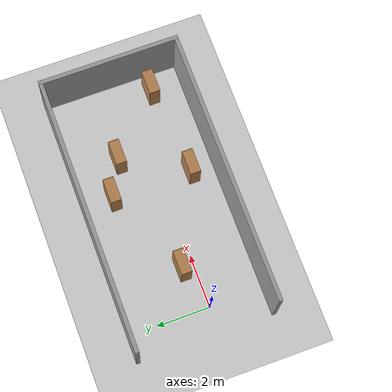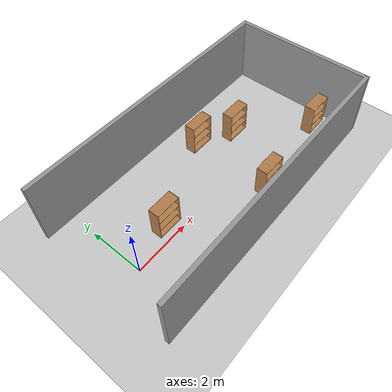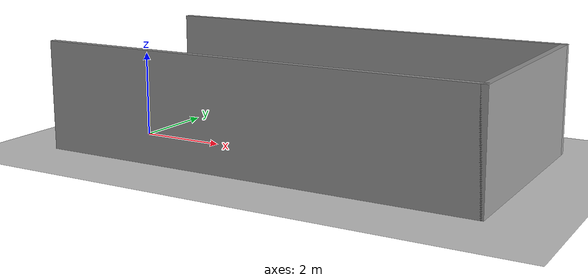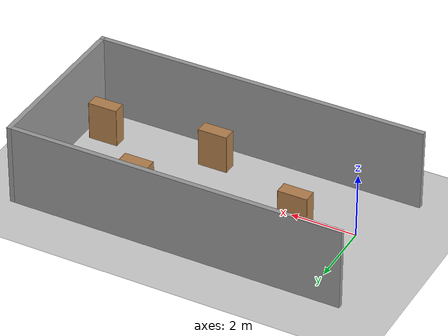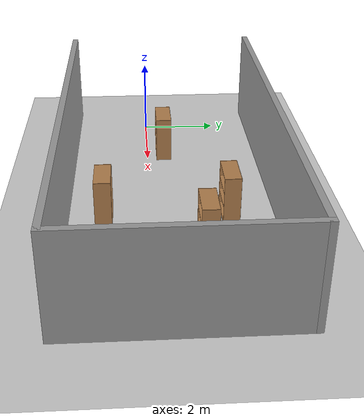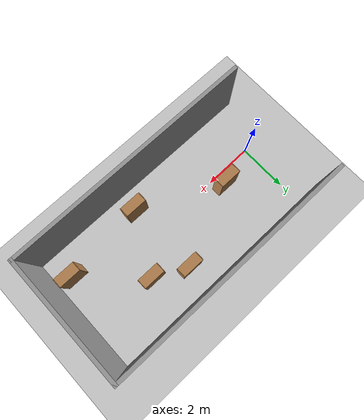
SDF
<sdf version="1.7">
 <world name="default">
  <light name="sun" type="directional">
   <pose>0 0 10 0 -0 0</pose>
   <diffuse>0.8 0.8 0.8 1</diffuse>
   <specular>0.2 0.2 0.2 1</specular>
   <attenuation>
    <range>1000</range>
    <constant>0.9</constant>
    <linear>0.01</linear>
    <quadratic>0.001</quadratic>
   </attenuation>
   <direction>-0.5 0.1 -0.9</direction>
   <spot><inner_angle>0</inner_angle><outer_angle>0</outer_angle><falloff>0</falloff></spot>
  </light>
  <model name="ground_plane">
   <static>1</static>
   <link name="link">
    <collision name="collision">
     <geometry><plane><normal>0 0 1</normal><size>100 100</size></plane></geometry>
     <surface><friction><ode><mu>100</mu><mu2>50</mu2></ode></friction></surface>
    </collision>
    <visual name="visual">
     <cast_shadows>0</cast_shadows>
     <geometry><plane><normal>0 0 1</normal><size>100 100</size></plane></geometry>
     <material>
      <script><uri>file://media/materials/scripts/gazebo.material</uri><name>Gazebo/Grey</name></script>
     </material>
    </visual>
   </link>
  </model>
  <gravity>0 0 -9.8</gravity>
  <magnetic_field>6e-06 2.3e-05 -4.2e-05</magnetic_field>
  <atmosphere type="adiabatic"/>
  <physics type="ode">
   <max_step_size>0.001</max_step_size>
   <real_time_factor>1</real_time_factor>
   <real_time_update_rate>1000</real_time_update_rate>
  </physics>
  <scene><ambient>0.4 0.4 0.4 1</ambient><background>0.7 0.7 0.7 1</background><shadows>1</shadows></scene>
  <spherical_coordinates>
   <surface_model>EARTH_WGS84</surface_model>
   <latitude_deg>0</latitude_deg>
   <longitude_deg>0</longitude_deg>
   <elevation>0</elevation>
   <heading_deg>0</heading_deg>
  </spherical_coordinates>
  <model name="walls">
   <pose>4.11162 0.501893 0 0 -0 0</pose>
   <link name="Wall_5">
    <collision name="Wall_5_Collision">
     <geometry><box><size>10.25 0.15 2.5</size></box></geometry>
     <pose>0 0 1.25 0 -0 0</pose>
    </collision>
    <visual name="Wall_5_Visual">
     <pose>0 0 1.25 0 -0 0</pose>
     <geometry><box><size>10.25 0.15 2.5</size></box></geometry>
     <material>
      <script><uri>file://media/materials/scripts/gazebo.material</uri><name>Gazebo/Grey</name></script>
      <ambient>1 1 1 1</ambient>
     </material>
     <meta><layer>0</layer></meta>
    </visual>
    <pose>-0 -2.55 0 0 -0 0</pose>
   </link>
   <link name="Wall_6">
    <collision name="Wall_6_Collision">
     <geometry><box><size>5.25 0.15 2.5</size></box></geometry>
     <pose>0 0 1.25 0 -0 0</pose>
    </collision>
    <visual name="Wall_6_Visual">
     <pose>0 0 1.25 0 -0 0</pose>
     <geometry><box><size>5.25 0.15 2.5</size></box></geometry>
     <material>
      <script><uri>file://media/materials/scripts/gazebo.material</uri><name>Gazebo/Grey</name></script>
      <ambient>1 1 1 1</ambient>
     </material>
     <meta><layer>0</layer></meta>
    </visual>
    <pose>5.05 0 0 0 -0 1.5708</pose>
   </link>
   <link name="Wall_7">
    <collision name="Wall_7_Collision">
     <geometry><box><size>10.25 0.15 2.5</size></box></geometry>
     <pose>0 0 1.25 0 -0 0</pose>
    </collision>
    <visual name="Wall_7_Visual">
     <pose>0 0 1.25 0 -0 0</pose>
     <geometry><box><size>10.25 0.15 2.5</size></box></geometry>
     <material>
      <script><uri>file://media/materials/scripts/gazebo.material</uri><name>Gazebo/Grey</name></script>
      <ambient>1 1 1 1</ambient>
     </material>
     <meta><layer>0</layer></meta>
    </visual>
    <pose>-0 2.55 0 0 -0 3.14159</pose>
   </link>
   <static>1</static>
  </model>
  <model name="bookshelf">
   <static>1</static>
   <link name="link">
    <inertial><mass>1</mass></inertial>
    <collision name="back">
     <pose>0 0.005 0.6 0 -0 0</pose>
     <geometry><box><size>0.9 0.01 1.2</size></box></geometry>
    </collision>
    <visual name="visual1">
     <pose>0 0.005 0.6 0 -0 0</pose>
     <geometry><box><size>0.9 0.01 1.2</size></box></geometry>
     <material>
      <script><uri>file://media/materials/scripts/gazebo.material</uri><name>Gazebo/Wood</name></script>
     </material>
    </visual>
    <collision name="left_side">
     <pose>0.45 -0.195 0.6 0 -0 0</pose>
     <geometry><box><size>0.02 0.4 1.2</size></box></geometry>
    </collision>
    <visual name="visual2">
     <pose>0.45 -0.195 0.6 0 -0 0</pose>
     <geometry><box><size>0.02 0.4 1.2</size></box></geometry>
     <material>
      <script><uri>file://media/materials/scripts/gazebo.material</uri><name>Gazebo/Wood</name></script>
     </material>
    </visual>
    <collision name="right_side">
     <pose>-0.45 -0.195 0.6 0 -0 0</pose>
     <geometry><box><size>0.02 0.4 1.2</size></box></geometry>
    </collision>
    <visual name="visual3">
     <pose>-0.45 -0.195 0.6 0 -0 0</pose>
     <geometry><box><size>0.02 0.4 1.2</size></box></geometry>
     <material>
      <script><uri>file://media/materials/scripts/gazebo.material</uri><name>Gazebo/Wood</name></script>
     </material>
    </visual>
    <collision name="bottom">
     <pose>0 -0.195 0.03 0 -0 0</pose>
     <geometry><box><size>0.88 0.4 0.06</size></box></geometry>
    </collision>
    <visual name="visual4">
     <pose>0 -0.195 0.03 0 -0 0</pose>
     <geometry><box><size>0.88 0.4 0.06</size></box></geometry>
     <material>
      <script><uri>file://media/materials/scripts/gazebo.material</uri><name>Gazebo/Wood</name></script>
     </material>
    </visual>
    <collision name="top">
     <pose>0 -0.195 1.19 0 -0 0</pose>
     <geometry><box><size>0.88 0.4 0.02</size></box></geometry>
    </collision>
    <visual name="visual5">
     <pose>0 -0.195 1.19 0 -0 0</pose>
     <geometry><box><size>0.88 0.4 0.02</size></box></geometry>
     <material>
      <script><uri>file://media/materials/scripts/gazebo.material</uri><name>Gazebo/Wood</name></script>
     </material>
    </visual>
    <collision name="low_shelf">
     <pose>0 -0.195 0.43 0 -0 0</pose>
     <geometry><box><size>0.88 0.4 0.02</size></box></geometry>
    </collision>
    <visual name="visual6">
     <pose>0 -0.195 0.43 0 -0 0</pose>
     <geometry><box><size>0.88 0.4 0.02</size></box></geometry>
     <material>
      <script><uri>file://media/materials/scripts/gazebo.material</uri><name>Gazebo/Wood</name></script>
     </material>
    </visual>
    <collision name="high_shelf">
     <pose>0 -0.195 0.8 0 -0 0</pose>
     <geometry><box><size>0.88 0.4 0.02</size></box></geometry>
    </collision>
    <visual name="visual7">
     <pose>0 -0.195 0.8 0 -0 0</pose>
     <geometry><box><size>0.88 0.4 0.02</size></box></geometry>
     <material>
      <script><uri>file://media/materials/scripts/gazebo.material</uri><name>Gazebo/Wood</name></script>
     </material>
    </visual>
   </link>
   <pose>1.66425 0.640418 0 0 -0 0</pose>
  </model>
  <model name="bookshelf_0">
   <static>1</static>
   <link name="link">
    <inertial><mass>1</mass></inertial>
    <collision name="back">
     <pose>0 0.005 0.6 0 -0 0</pose>
     <geometry><box><size>0.9 0.01 1.2</size></box></geometry>
    </collision>
    <visual name="visual1">
     <pose>0 0.005 0.6 0 -0 0</pose>
     <geometry><box><size>0.9 0.01 1.2</size></box></geometry>
     <material>
      <script><uri>file://media/materials/scripts/gazebo.material</uri><name>Gazebo/Wood</name></script>
     </material>
    </visual>
    <collision name="left_side">
     <pose>0.45 -0.195 0.6 0 -0 0</pose>
     <geometry><box><size>0.02 0.4 1.2</size></box></geometry>
    </collision>
    <visual name="visual2">
     <pose>0.45 -0.195 0.6 0 -0 0</pose>
     <geometry><box><size>0.02 0.4 1.2</size></box></geometry>
     <material>
      <script><uri>file://media/materials/scripts/gazebo.material</uri><name>Gazebo/Wood</name></script>
     </material>
    </visual>
    <collision name="right_side">
     <pose>-0.45 -0.195 0.6 0 -0 0</pose>
     <geometry><box><size>0.02 0.4 1.2</size></box></geometry>
    </collision>
    <visual name="visual3">
     <pose>-0.45 -0.195 0.6 0 -0 0</pose>
     <geometry><box><size>0.02 0.4 1.2</size></box></geometry>
     <material>
      <script><uri>file://media/materials/scripts/gazebo.material</uri><name>Gazebo/Wood</name></script>
     </material>
    </visual>
    <collision name="bottom">
     <pose>0 -0.195 0.03 0 -0 0</pose>
     <geometry><box><size>0.88 0.4 0.06</size></box></geometry>
    </collision>
    <visual name="visual4">
     <pose>0 -0.195 0.03 0 -0 0</pose>
     <geometry><box><size>0.88 0.4 0.06</size></box></geometry>
     <material>
      <script><uri>file://media/materials/scripts/gazebo.material</uri><name>Gazebo/Wood</name></script>
     </material>
    </visual>
    <collision name="top">
     <pose>0 -0.195 1.19 0 -0 0</pose>
     <geometry><box><size>0.88 0.4 0.02</size></box></geometry>
    </collision>
    <visual name="visual5">
     <pose>0 -0.195 1.19 0 -0 0</pose>
     <geometry><box><size>0.88 0.4 0.02</size></box></geometry>
     <material>
      <script><uri>file://media/materials/scripts/gazebo.material</uri><name>Gazebo/Wood</name></script>
     </material>
    </visual>
    <collision name="low_shelf">
     <pose>0 -0.195 0.43 0 -0 0</pose>
     <geometry><box><size>0.88 0.4 0.02</size></box></geometry>
    </collision>
    <visual name="visual6">
     <pose>0 -0.195 0.43 0 -0 0</pose>
     <geometry><box><size>0.88 0.4 0.02</size></box></geometry>
     <material>
      <script><uri>file://media/materials/scripts/gazebo.material</uri><name>Gazebo/Wood</name></script>
     </material>
    </visual>
    <collision name="high_shelf">
     <pose>0 -0.195 0.8 0 -0 0</pose>
     <geometry><box><size>0.88 0.4 0.02</size></box></geometry>
    </collision>
    <visual name="visual7">
     <pose>0 -0.195 0.8 0 -0 0</pose>
     <geometry><box><size>0.88 0.4 0.02</size></box></geometry>
     <material>
      <script><uri>file://media/materials/scripts/gazebo.material</uri><name>Gazebo/Wood</name></script>
     </material>
    </visual>
   </link>
   <pose>4.95819 2.0873 0 0 -0 0</pose>
  </model>
  <model name="bookshelf_1">
   <static>1</static>
   <link name="link">
    <inertial><mass>1</mass></inertial>
    <collision name="back">
     <pose>0 0.005 0.6 0 -0 0</pose>
     <geometry><box><size>0.9 0.01 1.2</size></box></geometry>
    </collision>
    <visual name="visual1">
     <pose>0 0.005 0.6 0 -0 0</pose>
     <geometry><box><size>0.9 0.01 1.2</size></box></geometry>
     <material>
      <script><uri>file://media/materials/scripts/gazebo.material</uri><name>Gazebo/Wood</name></script>
     </material>
    </visual>
    <collision name="left_side">
     <pose>0.45 -0.195 0.6 0 -0 0</pose>
     <geometry><box><size>0.02 0.4 1.2</size></box></geometry>
    </collision>
    <visual name="visual2">
     <pose>0.45 -0.195 0.6 0 -0 0</pose>
     <geometry><box><size>0.02 0.4 1.2</size></box></geometry>
     <material>
      <script><uri>file://media/materials/scripts/gazebo.material</uri><name>Gazebo/Wood</name></script>
     </material>
    </visual>
    <collision name="right_side">
     <pose>-0.45 -0.195 0.6 0 -0 0</pose>
     <geometry><box><size>0.02 0.4 1.2</size></box></geometry>
    </collision>
    <visual name="visual3">
     <pose>-0.45 -0.195 0.6 0 -0 0</pose>
     <geometry><box><size>0.02 0.4 1.2</size></box></geometry>
     <material>
      <script><uri>file://media/materials/scripts/gazebo.material</uri><name>Gazebo/Wood</name></script>
     </material>
    </visual>
    <collision name="bottom">
     <pose>0 -0.195 0.03 0 -0 0</pose>
     <geometry><box><size>0.88 0.4 0.06</size></box></geometry>
    </collision>
    <visual name="visual4">
     <pose>0 -0.195 0.03 0 -0 0</pose>
     <geometry><box><size>0.88 0.4 0.06</size></box></geometry>
     <material>
      <script><uri>file://media/materials/scripts/gazebo.material</uri><name>Gazebo/Wood</name></script>
     </material>
    </visual>
    <collision name="top">
     <pose>0 -0.195 1.19 0 -0 0</pose>
     <geometry><box><size>0.88 0.4 0.02</size></box></geometry>
    </collision>
    <visual name="visual5">
     <pose>0 -0.195 1.19 0 -0 0</pose>
     <geometry><box><size>0.88 0.4 0.02</size></box></geometry>
     <material>
      <script><uri>file://media/materials/scripts/gazebo.material</uri><name>Gazebo/Wood</name></script>
     </material>
    </visual>
    <collision name="low_shelf">
     <pose>0 -0.195 0.43 0 -0 0</pose>
     <geometry><box><size>0.88 0.4 0.02</size></box></geometry>
    </collision>
    <visual name="visual6">
     <pose>0 -0.195 0.43 0 -0 0</pose>
     <geometry><box><size>0.88 0.4 0.02</size></box></geometry>
     <material>
      <script><uri>file://media/materials/scripts/gazebo.material</uri><name>Gazebo/Wood</name></script>
     </material>
    </visual>
    <collision name="high_shelf">
     <pose>0 -0.195 0.8 0 -0 0</pose>
     <geometry><box><size>0.88 0.4 0.02</size></box></geometry>
    </collision>
    <visual name="visual7">
     <pose>0 -0.195 0.8 0 -0 0</pose>
     <geometry><box><size>0.88 0.4 0.02</size></box></geometry>
     <material>
      <script><uri>file://media/materials/scripts/gazebo.material</uri><name>Gazebo/Wood</name></script>
     </material>
    </visual>
   </link>
   <pose>4.98898 -0.929599 0 0 -0 0</pose>
  </model>
  <model name="bookshelf_2">
   <static>1</static>
   <link name="link">
    <inertial><mass>1</mass></inertial>
    <collision name="back">
     <pose>0 0.005 0.6 0 -0 0</pose>
     <geometry><box><size>0.9 0.01 1.2</size></box></geometry>
    </collision>
    <visual name="visual1">
     <pose>0 0.005 0.6 0 -0 0</pose>
     <geometry><box><size>0.9 0.01 1.2</size></box></geometry>
     <material>
      <script><uri>file://media/materials/scripts/gazebo.material</uri><name>Gazebo/Wood</name></script>
     </material>
    </visual>
    <collision name="left_side">
     <pose>0.45 -0.195 0.6 0 -0 0</pose>
     <geometry><box><size>0.02 0.4 1.2</size></box></geometry>
    </collision>
    <visual name="visual2">
     <pose>0.45 -0.195 0.6 0 -0 0</pose>
     <geometry><box><size>0.02 0.4 1.2</size></box></geometry>
     <material>
      <script><uri>file://media/materials/scripts/gazebo.material</uri><name>Gazebo/Wood</name></script>
     </material>
    </visual>
    <collision name="right_side">
     <pose>-0.45 -0.195 0.6 0 -0 0</pose>
     <geometry><box><size>0.02 0.4 1.2</size></box></geometry>
    </collision>
    <visual name="visual3">
     <pose>-0.45 -0.195 0.6 0 -0 0</pose>
     <geometry><box><size>0.02 0.4 1.2</size></box></geometry>
     <material>
      <script><uri>file://media/materials/scripts/gazebo.material</uri><name>Gazebo/Wood</name></script>
     </material>
    </visual>
    <collision name="bottom">
     <pose>0 -0.195 0.03 0 -0 0</pose>
     <geometry><box><size>0.88 0.4 0.06</size></box></geometry>
    </collision>
    <visual name="visual4">
     <pose>0 -0.195 0.03 0 -0 0</pose>
     <geometry><box><size>0.88 0.4 0.06</size></box></geometry>
     <material>
      <script><uri>file://media/materials/scripts/gazebo.material</uri><name>Gazebo/Wood</name></script>
     </material>
    </visual>
    <collision name="top">
     <pose>0 -0.195 1.19 0 -0 0</pose>
     <geometry><box><size>0.88 0.4 0.02</size></box></geometry>
    </collision>
    <visual name="visual5">
     <pose>0 -0.195 1.19 0 -0 0</pose>
     <geometry><box><size>0.88 0.4 0.02</size></box></geometry>
     <material>
      <script><uri>file://media/materials/scripts/gazebo.material</uri><name>Gazebo/Wood</name></script>
     </material>
    </visual>
    <collision name="low_shelf">
     <pose>0 -0.195 0.43 0 -0 0</pose>
     <geometry><box><size>0.88 0.4 0.02</size></box></geometry>
    </collision>
    <visual name="visual6">
     <pose>0 -0.195 0.43 0 -0 0</pose>
     <geometry><box><size>0.88 0.4 0.02</size></box></geometry>
     <material>
      <script><uri>file://media/materials/scripts/gazebo.material</uri><name>Gazebo/Wood</name></script>
     </material>
    </visual>
    <collision name="high_shelf">
     <pose>0 -0.195 0.8 0 -0 0</pose>
     <geometry><box><size>0.88 0.4 0.02</size></box></geometry>
    </collision>
    <visual name="visual7">
     <pose>0 -0.195 0.8 0 -0 0</pose>
     <geometry><box><size>0.88 0.4 0.02</size></box></geometry>
     <material>
      <script><uri>file://media/materials/scripts/gazebo.material</uri><name>Gazebo/Wood</name></script>
     </material>
    </visual>
   </link>
   <pose>6.23578 1.44083 0 0 -0 0</pose>
  </model>
  <model name="bookshelf_3">
   <static>1</static>
   <link name="link">
    <inertial><mass>1</mass></inertial>
    <collision name="back">
     <pose>0 0.005 0.6 0 -0 0</pose>
     <geometry><box><size>0.9 0.01 1.2</size></box></geometry>
    </collision>
    <visual name="visual1">
     <pose>0 0.005 0.6 0 -0 0</pose>
     <geometry><box><size>0.9 0.01 1.2</size></box></geometry>
     <material>
      <script><uri>file://media/materials/scripts/gazebo.material</uri><name>Gazebo/Wood</name></script>
     </material>
    </visual>
    <collision name="left_side">
     <pose>0.45 -0.195 0.6 0 -0 0</pose>
     <geometry><box><size>0.02 0.4 1.2</size></box></geometry>
    </collision>
    <visual name="visual2">
     <pose>0.45 -0.195 0.6 0 -0 0</pose>
     <geometry><box><size>0.02 0.4 1.2</size></box></geometry>
     <material>
      <script><uri>file://media/materials/scripts/gazebo.material</uri><name>Gazebo/Wood</name></script>
     </material>
    </visual>
    <collision name="right_side">
     <pose>-0.45 -0.195 0.6 0 -0 0</pose>
     <geometry><box><size>0.02 0.4 1.2</size></box></geometry>
    </collision>
    <visual name="visual3">
     <pose>-0.45 -0.195 0.6 0 -0 0</pose>
     <geometry><box><size>0.02 0.4 1.2</size></box></geometry>
     <material>
      <script><uri>file://media/materials/scripts/gazebo.material</uri><name>Gazebo/Wood</name></script>
     </material>
    </visual>
    <collision name="bottom">
     <pose>0 -0.195 0.03 0 -0 0</pose>
     <geometry><box><size>0.88 0.4 0.06</size></box></geometry>
    </collision>
    <visual name="visual4">
     <pose>0 -0.195 0.03 0 -0 0</pose>
     <geometry><box><size>0.88 0.4 0.06</size></box></geometry>
     <material>
      <script><uri>file://media/materials/scripts/gazebo.material</uri><name>Gazebo/Wood</name></script>
     </material>
    </visual>
    <collision name="top">
     <pose>0 -0.195 1.19 0 -0 0</pose>
     <geometry><box><size>0.88 0.4 0.02</size></box></geometry>
    </collision>
    <visual name="visual5">
     <pose>0 -0.195 1.19 0 -0 0</pose>
     <geometry><box><size>0.88 0.4 0.02</size></box></geometry>
     <material>
      <script><uri>file://media/materials/scripts/gazebo.material</uri><name>Gazebo/Wood</name></script>
     </material>
    </visual>
    <collision name="low_shelf">
     <pose>0 -0.195 0.43 0 -0 0</pose>
     <geometry><box><size>0.88 0.4 0.02</size></box></geometry>
    </collision>
    <visual name="visual6">
     <pose>0 -0.195 0.43 0 -0 0</pose>
     <geometry><box><size>0.88 0.4 0.02</size></box></geometry>
     <material>
      <script><uri>file://media/materials/scripts/gazebo.material</uri><name>Gazebo/Wood</name></script>
     </material>
    </visual>
    <collision name="high_shelf">
     <pose>0 -0.195 0.8 0 -0 0</pose>
     <geometry><box><size>0.88 0.4 0.02</size></box></geometry>
    </collision>
    <visual name="visual7">
     <pose>0 -0.195 0.8 0 -0 0</pose>
     <geometry><box><size>0.88 0.4 0.02</size></box></geometry>
     <material>
      <script><uri>file://media/materials/scripts/gazebo.material</uri><name>Gazebo/Wood</name></script>
     </material>
    </visual>
   </link>
   <pose>8.3875 -0.613768 0 0 -0 0</pose>
  </model>
 </world>
</sdf>
